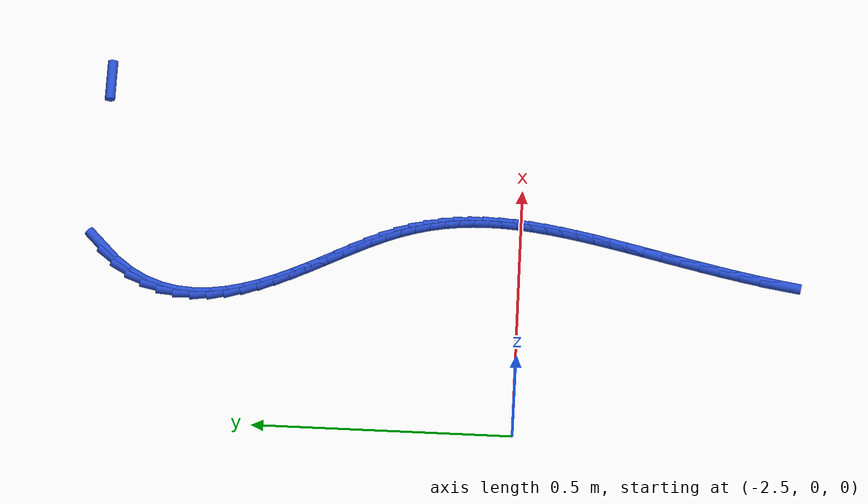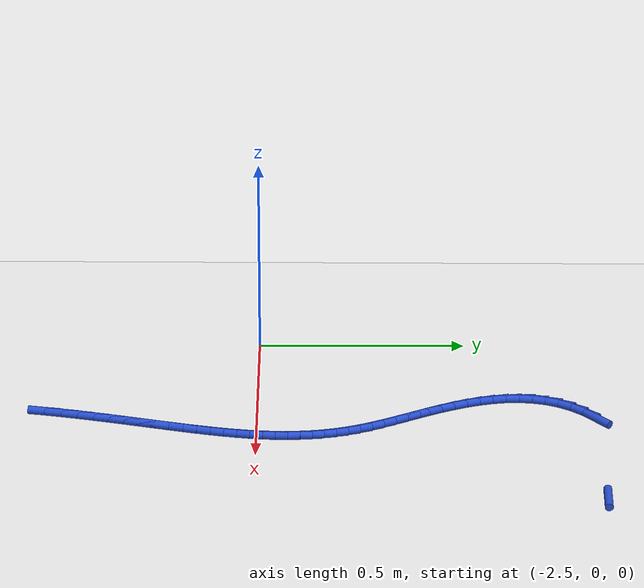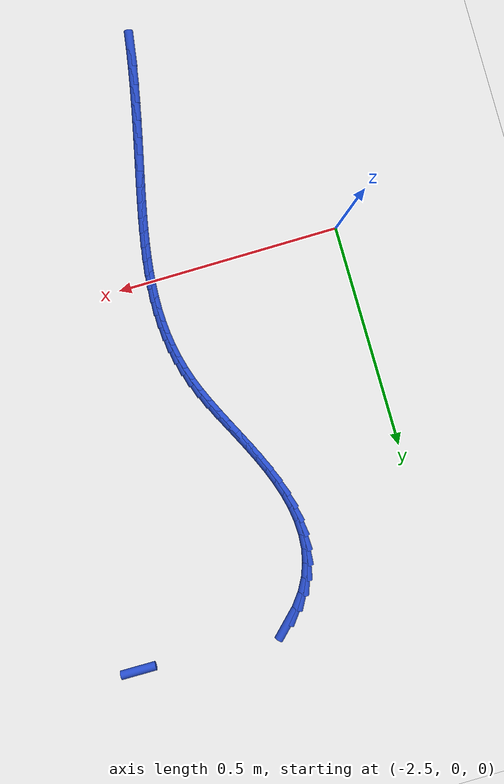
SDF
<sdf version="1.6">
 <world name="default">
  <model name="ground_plane">
   <static>1</static>
   <link name="link">
    <collision name="collision">
     <geometry><plane><normal>0 0 1</normal><size>100 100</size></plane></geometry>
     <surface><friction><ode><mu>100</mu><mu2>50</mu2></ode></friction></surface>
    </collision>
    <visual name="visual">
     <cast_shadows>0</cast_shadows>
     <geometry><plane><normal>0 0 1</normal><size>100 100</size></plane></geometry>
     <material>
      <script><uri>file://media/materials/scripts/gazebo.material</uri><name>Gazebo/WhiteGlow</name></script>
     </material>
    </visual>
   </link>
  </model>
  <model name="line">
   <link name="link_95">
    <pose>-1.808317411353561 0.8166047708787597 0.01 0 1.57 -0.008573717571074287</pose>
    <collision name="collision">
     <geometry><cylinder><radius>0.01</radius><length>0.08</length></cylinder></geometry>
    </collision>
    <visual name="visual">
     <material>
      <script><name>Gazebo/Blue</name><uri>file://media/materials/scripts/gazebo.material</uri></script>
     </material>
     <geometry><cylinder><radius>0.01</radius><length>0.08</length></cylinder></geometry>
    </visual>
   </link>
   <link name="link_113">
    <pose>-2.15246799686431 0.8094843532724709 0.01 0 1.57 0.7798194832389569</pose>
    <collision name="collision">
     <geometry><cylinder><radius>0.01</radius><length>0.08</length></cylinder></geometry>
    </collision>
    <visual name="visual">
     <material>
      <script><name>Gazebo/Blue</name><uri>file://media/materials/scripts/gazebo.material</uri></script>
     </material>
     <geometry><cylinder><radius>0.01</radius><length>0.08</length></cylinder></geometry>
    </visual>
   </link>
   <link name="link_114">
    <pose>-2.1810256323094874 0.7812435812631074 0.01 0 1.57 0.9203190427335062</pose>
    <collision name="collision">
     <geometry><cylinder><radius>0.01</radius><length>0.08</length></cylinder></geometry>
    </collision>
    <visual name="visual">
     <material>
      <script><name>Gazebo/Blue</name><uri>file://media/materials/scripts/gazebo.material</uri></script>
     </material>
     <geometry><cylinder><radius>0.01</radius><length>0.08</length></cylinder></geometry>
    </visual>
   </link>
   <link name="link_115">
    <pose>-2.2033901161845018 0.7518536672103033 0.01 0 1.57 1.0685054282505406</pose>
    <collision name="collision">
     <geometry><cylinder><radius>0.01</radius><length>0.08</length></cylinder></geometry>
    </collision>
    <visual name="visual">
     <material>
      <script><name>Gazebo/Blue</name><uri>file://media/materials/scripts/gazebo.material</uri></script>
     </material>
     <geometry><cylinder><radius>0.01</radius><length>0.08</length></cylinder></geometry>
    </visual>
   </link>
   <link name="link_116">
    <pose>-2.220049701734901 0.7215238530338525 0.01 0 1.57 1.2178170358896543</pose>
    <collision name="collision">
     <geometry><cylinder><radius>0.01</radius><length>0.08</length></cylinder></geometry>
    </collision>
    <visual name="visual">
     <material>
      <script><name>Gazebo/Blue</name><uri>file://media/materials/scripts/gazebo.material</uri></script>
     </material>
     <geometry><cylinder><radius>0.01</radius><length>0.08</length></cylinder></geometry>
    </visual>
   </link>
   <link name="link_117">
    <pose>-2.2314926422062316 0.6904633806535476 0.01 0 1.57 1.3613080126870583</pose>
    <collision name="collision">
     <geometry><cylinder><radius>0.01</radius><length>0.08</length></cylinder></geometry>
    </collision>
    <visual name="visual">
     <material>
      <script><name>Gazebo/Blue</name><uri>file://media/materials/scripts/gazebo.material</uri></script>
     </material>
     <geometry><cylinder><radius>0.01</radius><length>0.08</length></cylinder></geometry>
    </visual>
   </link>
   <link name="link_118">
    <pose>-2.238207190844042 0.658881491989182 0.01 0 1.57 1.4933692703480816</pose>
    <collision name="collision">
     <geometry><cylinder><radius>0.01</radius><length>0.08</length></cylinder></geometry>
    </collision>
    <visual name="visual">
     <material>
      <script><name>Gazebo/Blue</name><uri>file://media/materials/scripts/gazebo.material</uri></script>
     </material>
     <geometry><cylinder><radius>0.01</radius><length>0.08</length></cylinder></geometry>
    </visual>
   </link>
   <link name="link_119">
    <pose>-2.2406816008938795 0.6269874289605496 0.01 0 1.57 -1.5308926683549586</pose>
    <collision name="collision">
     <geometry><cylinder><radius>0.01</radius><length>0.08</length></cylinder></geometry>
    </collision>
    <visual name="visual">
     <material>
      <script><name>Gazebo/Blue</name><uri>file://media/materials/scripts/gazebo.material</uri></script>
     </material>
     <geometry><cylinder><radius>0.01</radius><length>0.08</length></cylinder></geometry>
    </visual>
   </link>
   <link name="link_120">
    <pose>-2.239404125601293 0.5949904334874435 0.01 0 1.57 -1.4293511824248202</pose>
    <collision name="collision">
     <geometry><cylinder><radius>0.01</radius><length>0.08</length></cylinder></geometry>
    </collision>
    <visual name="visual">
     <material>
      <script><name>Gazebo/Blue</name><uri>file://media/materials/scripts/gazebo.material</uri></script>
     </material>
     <geometry><cylinder><radius>0.01</radius><length>0.08</length></cylinder></geometry>
    </visual>
   </link>
   <link name="link_121">
    <pose>-2.234863018211828 0.5630997474896566 0.01 0 1.57 -1.343098321942819</pose>
    <collision name="collision">
     <geometry><cylinder><radius>0.01</radius><length>0.08</length></cylinder></geometry>
    </collision>
    <visual name="visual">
     <material>
      <script><name>Gazebo/Blue</name><uri>file://media/materials/scripts/gazebo.material</uri></script>
     </material>
     <geometry><cylinder><radius>0.01</radius><length>0.08</length></cylinder></geometry>
    </visual>
   </link>
   <link name="link_122">
    <pose>-2.2275461995403414 0.5315231456190828 0.01 0 1.57 -1.2710630011240833</pose>
    <collision name="collision">
     <geometry><cylinder><radius>0.01</radius><length>0.08</length></cylinder></geometry>
    </collision>
    <visual name="visual">
     <material>
      <script><name>Gazebo/Blue</name><uri>file://media/materials/scripts/gazebo.material</uri></script>
     </material>
     <geometry><cylinder><radius>0.01</radius><length>0.08</length></cylinder></geometry>
    </visual>
   </link>
   <link name="link_123">
    <pose>-2.217921470420717 0.5003795978447168 0.01 0 1.57 -1.2128098961491003</pose>
    <collision name="collision">
     <geometry><cylinder><radius>0.01</radius><length>0.08</length></cylinder></geometry>
    </collision>
    <visual name="visual">
     <material>
      <script><name>Gazebo/Blue</name><uri>file://media/materials/scripts/gazebo.material</uri></script>
     </material>
     <geometry><cylinder><radius>0.01</radius><length>0.08</length></cylinder></geometry>
    </visual>
   </link>
   <link name="link_124">
    <pose>-2.206425345171899 0.4696499830984585 0.01 0 1.57 -1.1679115958449016</pose>
    <collision name="collision">
     <geometry><cylinder><radius>0.01</radius><length>0.08</length></cylinder></geometry>
    </collision>
    <visual name="visual">
     <material>
      <script><name>Gazebo/Blue</name><uri>file://media/materials/scripts/gazebo.material</uri></script>
     </material>
     <geometry><cylinder><radius>0.01</radius><length>0.08</length></cylinder></geometry>
    </visual>
   </link>
   <link name="link_125">
    <pose>-2.1934916350139777 0.43930324949395333 0.01 0 1.57 -1.1358168292088544</pose>
    <collision name="collision">
     <geometry><cylinder><radius>0.01</radius><length>0.08</length></cylinder></geometry>
    </collision>
    <visual name="visual">
     <material>
      <script><name>Gazebo/Blue</name><uri>file://media/materials/scripts/gazebo.material</uri></script>
     </material>
     <geometry><cylinder><radius>0.01</radius><length>0.08</length></cylinder></geometry>
    </visual>
   </link>
   <link name="link_126">
    <pose>-2.1795541511670464 0.40930834514484604 0.01 0 1.57 -1.1160744586508307</pose>
    <collision name="collision">
     <geometry><cylinder><radius>0.01</radius><length>0.08</length></cylinder></geometry>
    </collision>
    <visual name="visual">
     <material>
      <script><name>Gazebo/Blue</name><uri>file://media/materials/scripts/gazebo.material</uri></script>
     </material>
     <geometry><cylinder><radius>0.01</radius><length>0.08</length></cylinder></geometry>
    </visual>
   </link>
   <link name="link_127">
    <pose>-2.1650467048511968 0.3796342181647832 0.01 0 1.57 -1.108472830756958</pose>
    <collision name="collision">
     <geometry><cylinder><radius>0.01</radius><length>0.08</length></cylinder></geometry>
    </collision>
    <visual name="visual">
     <material>
      <script><name>Gazebo/Blue</name><uri>file://media/materials/scripts/gazebo.material</uri></script>
     </material>
     <geometry><cylinder><radius>0.01</radius><length>0.08</length></cylinder></geometry>
    </visual>
   </link>
   <link name="link_128">
    <pose>-2.150403107286523 0.35024981666741 0.01 0 1.57 -1.1131247939191315</pose>
    <collision name="collision">
     <geometry><cylinder><radius>0.01</radius><length>0.08</length></cylinder></geometry>
    </collision>
    <visual name="visual">
     <material>
      <script><name>Gazebo/Blue</name><uri>file://media/materials/scripts/gazebo.material</uri></script>
     </material>
     <geometry><cylinder><radius>0.01</radius><length>0.08</length></cylinder></geometry>
    </visual>
   </link>
   <link name="link_129">
    <pose>-2.1360571696931143 0.32112408876637166 0.01 0 1.57 -1.1305187448929543</pose>
    <collision name="collision">
     <geometry><cylinder><radius>0.01</radius><length>0.08</length></cylinder></geometry>
    </collision>
    <visual name="visual">
     <material>
      <script><name>Gazebo/Blue</name><uri>file://media/materials/scripts/gazebo.material</uri></script>
     </material>
     <geometry><cylinder><radius>0.01</radius><length>0.08</length></cylinder></geometry>
    </visual>
   </link>
   <link name="link_130">
    <pose>-2.1224427032910644 0.29222598257531385 0.01 0 1.57 -1.1615409057303214</pose>
    <collision name="collision">
     <geometry><cylinder><radius>0.01</radius><length>0.08</length></cylinder></geometry>
    </collision>
    <visual name="visual">
     <material>
      <script><name>Gazebo/Blue</name><uri>file://media/materials/scripts/gazebo.material</uri></script>
     </material>
     <geometry><cylinder><radius>0.01</radius><length>0.08</length></cylinder></geometry>
    </visual>
   </link>
   <link name="link_131">
    <pose>-2.109993519300466 0.2635244462078822 0.01 0 1.57 -1.2074476462236352</pose>
    <collision name="collision">
     <geometry><cylinder><radius>0.01</radius><length>0.08</length></cylinder></geometry>
    </collision>
    <visual name="visual">
     <material>
      <script><name>Gazebo/Blue</name><uri>file://media/materials/scripts/gazebo.material</uri></script>
     </material>
     <geometry><cylinder><radius>0.01</radius><length>0.08</length></cylinder></geometry>
    </visual>
   </link>
   <link name="link_132">
    <pose>-2.099143242163106 0.23498841792003322 0.01 0 1.57 -1.2657160762712618</pose>
    <collision name="collision">
     <geometry><cylinder><radius>0.01</radius><length>0.08</length></cylinder></geometry>
    </collision>
    <visual name="visual">
     <material>
      <script><name>Gazebo/Blue</name><uri>file://media/materials/scripts/gazebo.material</uri></script>
     </material>
     <geometry><cylinder><radius>0.01</radius><length>0.08</length></cylinder></geometry>
    </visual>
   </link>
   <link name="link_133">
    <pose>-2.090197125736608 0.2065800608913859 0.01 0 1.57 -1.3256679682812935</pose>
    <collision name="collision">
     <geometry><cylinder><radius>0.01</radius><length>0.08</length></cylinder></geometry>
    </collision>
    <visual name="visual">
     <material>
      <script><name>Gazebo/Blue</name><uri>file://media/materials/scripts/gazebo.material</uri></script>
     </material>
     <geometry><cylinder><radius>0.01</radius><length>0.08</length></cylinder></geometry>
    </visual>
   </link>
   <link name="link_134">
    <pose>-2.0831083423718053 0.17824295632578477 0.01 0 1.57 -1.3845247850774105</pose>
    <collision name="collision">
     <geometry><cylinder><radius>0.01</radius><length>0.08</length></cylinder></geometry>
    </collision>
    <visual name="visual">
     <material>
      <script><name>Gazebo/Blue</name><uri>file://media/materials/scripts/gazebo.material</uri></script>
     </material>
     <geometry><cylinder><radius>0.01</radius><length>0.08</length></cylinder></geometry>
    </visual>
   </link>
   <link name="link_135">
    <pose>-2.0777702390026556 0.14991752799214347 0.01 0 1.57 -1.4413291885164778</pose>
    <collision name="collision">
     <geometry><cylinder><radius>0.01</radius><length>0.08</length></cylinder></geometry>
    </collision>
    <visual name="visual">
     <material>
      <script><name>Gazebo/Blue</name><uri>file://media/materials/scripts/gazebo.material</uri></script>
     </material>
     <geometry><cylinder><radius>0.01</radius><length>0.08</length></cylinder></geometry>
    </visual>
   </link>
   <link name="link_136">
    <pose>-2.0740761625631188 0.12154419965937681 0.01 0 1.57 -1.4952157951736822</pose>
    <collision name="collision">
     <geometry><cylinder><radius>0.01</radius><length>0.08</length></cylinder></geometry>
    </collision>
    <visual name="visual">
     <material>
      <script><name>Gazebo/Blue</name><uri>file://media/materials/scripts/gazebo.material</uri></script>
     </material>
     <geometry><cylinder><radius>0.01</radius><length>0.08</length></cylinder></geometry>
    </visual>
   </link>
   <link name="link_137">
    <pose>-2.071919459987153 0.09306339509639922 0.01 0 1.57 -1.545460175811709</pose>
    <collision name="collision">
     <geometry><cylinder><radius>0.01</radius><length>0.08</length></cylinder></geometry>
    </collision>
    <visual name="visual">
     <material>
      <script><name>Gazebo/Blue</name><uri>file://media/materials/scripts/gazebo.material</uri></script>
     </material>
     <geometry><cylinder><radius>0.01</radius><length>0.08</length></cylinder></geometry>
    </visual>
   </link>
   <link name="link_138">
    <pose>-2.07119347820872 0.06441553807212531 0.01 0 1.57 1.5500859859599745</pose>
    <collision name="collision">
     <geometry><cylinder><radius>0.01</radius><length>0.08</length></cylinder></geometry>
    </collision>
    <visual name="visual">
     <material>
      <script><name>Gazebo/Blue</name><uri>file://media/materials/scripts/gazebo.material</uri></script>
     </material>
     <geometry><cylinder><radius>0.01</radius><length>0.08</length></cylinder></geometry>
    </visual>
   </link>
   <link name="link_139">
    <pose>-2.071791564161777 0.035541052355469685 0.01 0 1.57 1.5086180889110856</pose>
    <collision name="collision">
     <geometry><cylinder><radius>0.01</radius><length>0.08</length></cylinder></geometry>
    </collision>
    <visual name="visual">
     <material>
      <script><name>Gazebo/Blue</name><uri>file://media/materials/scripts/gazebo.material</uri></script>
     </material>
     <geometry><cylinder><radius>0.01</radius><length>0.08</length></cylinder></geometry>
    </visual>
   </link>
   <link name="link_140">
    <pose>-2.073607064780284 0.006380361715346079 0.01 0 1.57 1.4719459861901218</pose>
    <collision name="collision">
     <geometry><cylinder><radius>0.01</radius><length>0.08</length></cylinder></geometry>
    </collision>
    <visual name="visual">
     <material>
      <script><name>Gazebo/Blue</name><uri>file://media/materials/scripts/gazebo.material</uri></script>
     </material>
     <geometry><cylinder><radius>0.01</radius><length>0.08</length></cylinder></geometry>
    </visual>
   </link>
   <link name="link_141">
    <pose>-2.076533326998198 -0.023126110079329205 0.01 0 1.57 1.440146269741007</pose>
    <collision name="collision">
     <geometry><cylinder><radius>0.01</radius><length>0.08</length></cylinder></geometry>
    </collision>
    <visual name="visual">
     <material>
      <script><name>Gazebo/Blue</name><uri>file://media/materials/scripts/gazebo.material</uri></script>
     </material>
     <geometry><cylinder><radius>0.01</radius><length>0.08</length></cylinder></geometry>
    </visual>
   </link>
   <link name="link_142">
    <pose>-2.080463697749481 -0.05303793925964251 0.01 0 1.57 1.4131830111608967</pose>
    <collision name="collision">
     <geometry><cylinder><radius>0.01</radius><length>0.08</length></cylinder></geometry>
    </collision>
    <visual name="visual">
     <material>
      <script><name>Gazebo/Blue</name><uri>file://media/materials/scripts/gazebo.material</uri></script>
     </material>
     <geometry><cylinder><radius>0.01</radius><length>0.08</length></cylinder></geometry>
    </visual>
   </link>
   <link name="link_143">
    <pose>-2.0852915239680905 -0.08341470205667914 0.01 0 1.57 1.390936079114961</pose>
    <collision name="collision">
     <geometry><cylinder><radius>0.01</radius><length>0.08</length></cylinder></geometry>
    </collision>
    <visual name="visual">
     <material>
      <script><name>Gazebo/Blue</name><uri>file://media/materials/scripts/gazebo.material</uri></script>
     </material>
     <geometry><cylinder><radius>0.01</radius><length>0.08</length></cylinder></geometry>
    </visual>
   </link>
   <link name="link_144">
    <pose>-2.090910152587986 -0.11431597470152453 0.01 0 1.57 1.3732265097756946</pose>
    <collision name="collision">
     <geometry><cylinder><radius>0.01</radius><length>0.08</length></cylinder></geometry>
    </collision>
    <visual name="visual">
     <material>
      <script><name>Gazebo/Blue</name><uri>file://media/materials/scripts/gazebo.material</uri></script>
     </material>
     <geometry><cylinder><radius>0.01</radius><length>0.08</length></cylinder></geometry>
    </visual>
   </link>
   <link name="link_145">
    <pose>-2.097212930543127 -0.14580133342526413 0.01 0 1.57 1.3598373847877527</pose>
    <collision name="collision">
     <geometry><cylinder><radius>0.01</radius><length>0.08</length></cylinder></geometry>
    </collision>
    <visual name="visual">
     <material>
      <script><name>Gazebo/Blue</name><uri>file://media/materials/scripts/gazebo.material</uri></script>
     </material>
     <geometry><cylinder><radius>0.01</radius><length>0.08</length></cylinder></geometry>
    </visual>
   </link>
   <link name="link_146">
    <pose>-2.1040932047674716 -0.1779303544589833 0.01 0 1.57 1.3505298659487714</pose>
    <collision name="collision">
     <geometry><cylinder><radius>0.01</radius><length>0.08</length></cylinder></geometry>
    </collision>
    <visual name="visual">
     <material>
      <script><name>Gazebo/Blue</name><uri>file://media/materials/scripts/gazebo.material</uri></script>
     </material>
     <geometry><cylinder><radius>0.01</radius><length>0.08</length></cylinder></geometry>
    </visual>
   </link>
   <link name="link_147">
    <pose>-2.111444322194982 -0.21076261403376761 0.01 0 1.57 1.3450547600361384</pose>
    <collision name="collision">
     <geometry><cylinder><radius>0.01</radius><length>0.08</length></cylinder></geometry>
    </collision>
    <visual name="visual">
     <material>
      <script><name>Gazebo/Blue</name><uri>file://media/materials/scripts/gazebo.material</uri></script>
     </material>
     <geometry><cylinder><radius>0.01</radius><length>0.08</length></cylinder></geometry>
    </visual>
   </link>
   <link name="link_148">
    <pose>-2.119159629759613 -0.24435768838070226 0.01 0 1.57 1.3431603347527297</pose>
    <collision name="collision">
     <geometry><cylinder><radius>0.01</radius><length>0.08</length></cylinder></geometry>
    </collision>
    <visual name="visual">
     <material>
      <script><name>Gazebo/Blue</name><uri>file://media/materials/scripts/gazebo.material</uri></script>
     </material>
     <geometry><cylinder><radius>0.01</radius><length>0.08</length></cylinder></geometry>
    </visual>
   </link>
   <link name="link_149">
    <pose>-2.1271324743953275 -0.27877515373087375 0.01 0 1.57 1.344597203742555</pose>
    <collision name="collision">
     <geometry><cylinder><radius>0.01</radius><length>0.08</length></cylinder></geometry>
    </collision>
    <visual name="visual">
     <material>
      <script><name>Gazebo/Blue</name><uri>file://media/materials/scripts/gazebo.material</uri></script>
     </material>
     <geometry><cylinder><radius>0.01</radius><length>0.08</length></cylinder></geometry>
    </visual>
   </link>
   <link name="link_150">
    <pose>-2.1352562030360827 -0.31407458631536556 0.01 0 1.57 1.34912105427768</pose>
    <collision name="collision">
     <geometry><cylinder><radius>0.01</radius><length>0.08</length></cylinder></geometry>
    </collision>
    <visual name="visual">
     <material>
      <script><name>Gazebo/Blue</name><uri>file://media/materials/scripts/gazebo.material</uri></script>
     </material>
     <geometry><cylinder><radius>0.01</radius><length>0.08</length></cylinder></geometry>
    </visual>
   </link>
   <link name="link_151">
    <pose>-2.143424162615838 -0.350315562365264 0.01 0 1.57 1.3564938823682422</pose>
    <collision name="collision">
     <geometry><cylinder><radius>0.01</radius><length>0.08</length></cylinder></geometry>
    </collision>
    <visual name="visual">
     <material>
      <script><name>Gazebo/Blue</name><uri>file://media/materials/scripts/gazebo.material</uri></script>
     </material>
     <geometry><cylinder><radius>0.01</radius><length>0.08</length></cylinder></geometry>
    </visual>
   </link>
   <link name="link_152">
    <pose>-2.1515297000685534 -0.38755765811165455 0.01 0 1.57 1.3664842730012594</pose>
    <collision name="collision">
     <geometry><cylinder><radius>0.01</radius><length>0.08</length></cylinder></geometry>
    </collision>
    <visual name="visual">
     <material>
      <script><name>Gazebo/Blue</name><uri>file://media/materials/scripts/gazebo.material</uri></script>
     </material>
     <geometry><cylinder><radius>0.01</radius><length>0.08</length></cylinder></geometry>
    </visual>
   </link>
   <link name="link_153">
    <pose>-2.1594661623281874 -0.42586044978562265 0.01 0 1.57 1.3788671418610714</pose>
    <collision name="collision">
     <geometry><cylinder><radius>0.01</radius><length>0.08</length></cylinder></geometry>
    </collision>
    <visual name="visual">
     <material>
      <script><name>Gazebo/Blue</name><uri>file://media/materials/scripts/gazebo.material</uri></script>
     </material>
     <geometry><cylinder><radius>0.01</radius><length>0.08</length></cylinder></geometry>
    </visual>
   </link>
   <link name="link_154">
    <pose>-2.1671268963286985 -0.4652835136182535 0.01 0 1.57 1.3934233963272282</pose>
    <collision name="collision">
     <geometry><cylinder><radius>0.01</radius><length>0.08</length></cylinder></geometry>
    </collision>
    <visual name="visual">
     <material>
      <script><name>Gazebo/Blue</name><uri>file://media/materials/scripts/gazebo.material</uri></script>
     </material>
     <geometry><cylinder><radius>0.01</radius><length>0.08</length></cylinder></geometry>
    </visual>
   </link>
   <link name="link_155">
    <pose>-2.174405240008427 -0.5058864101135517 0.01 0 1.57 1.4129989259151865</pose>
    <collision name="collision">
     <geometry><cylinder><radius>0.01</radius><length>0.08</length></cylinder></geometry>
    </collision>
    <visual name="visual">
     <material>
      <script><name>Gazebo/Blue</name><uri>file://media/materials/scripts/gazebo.material</uri></script>
     </material>
     <geometry><cylinder><radius>0.01</radius><length>0.08</length></cylinder></geometry>
    </visual>
   </link>
  </model>
 </world>
</sdf>
